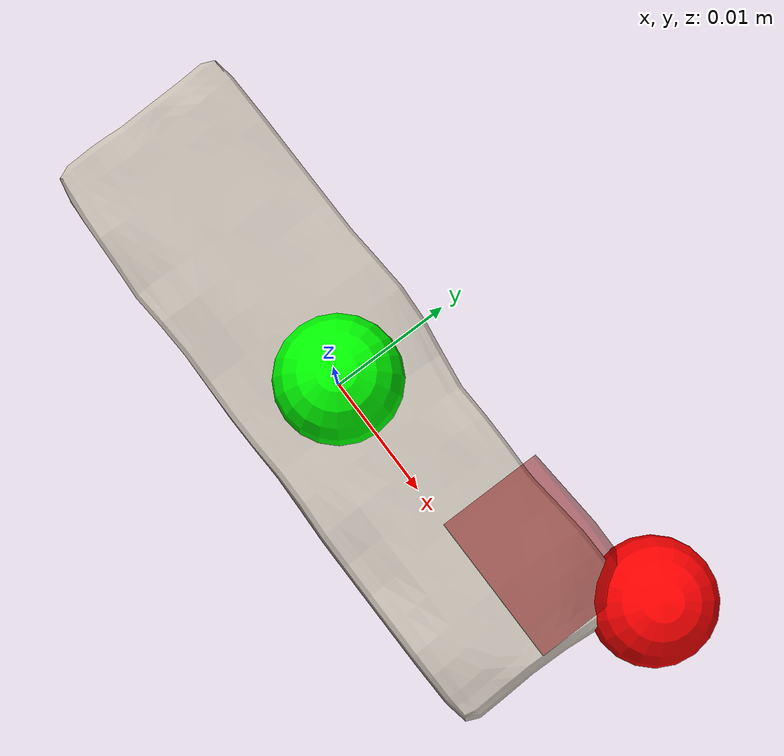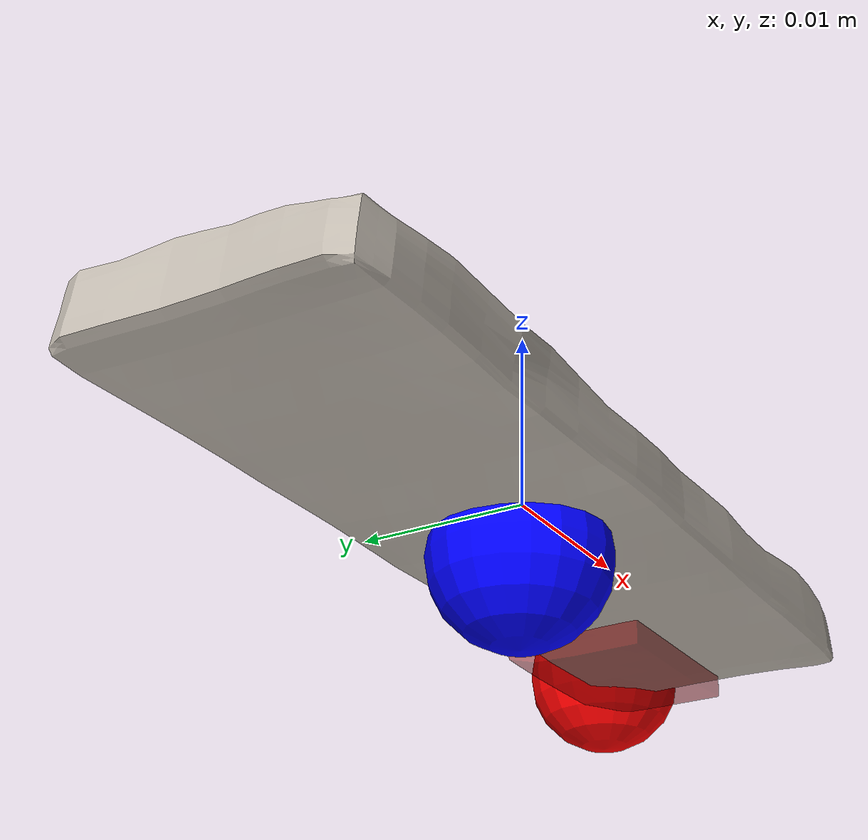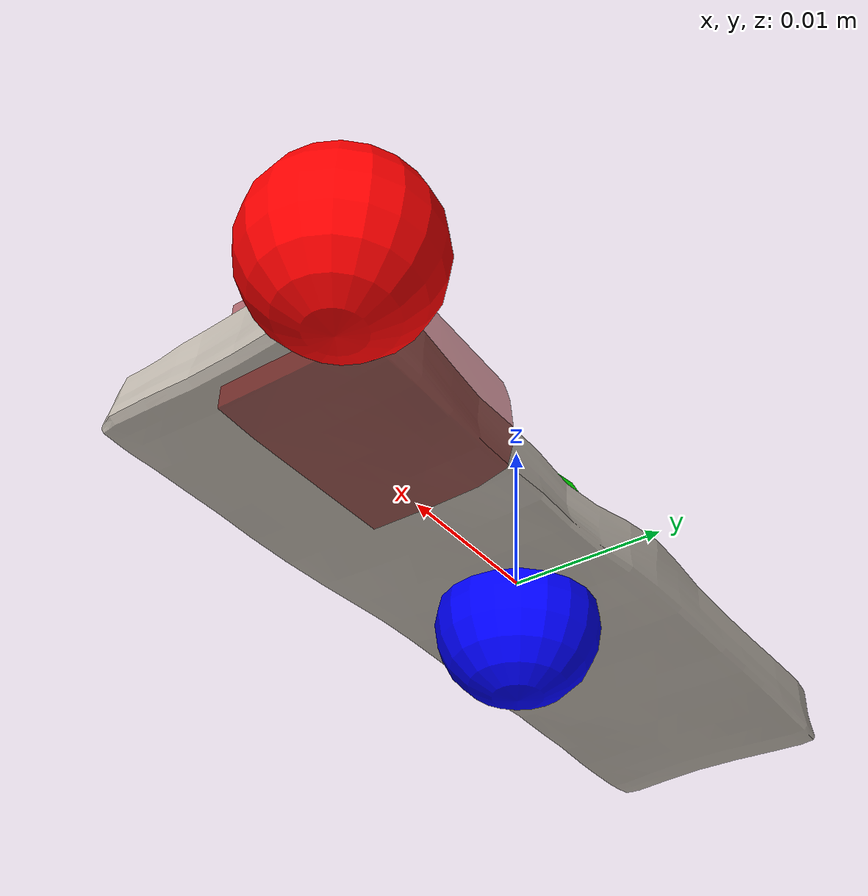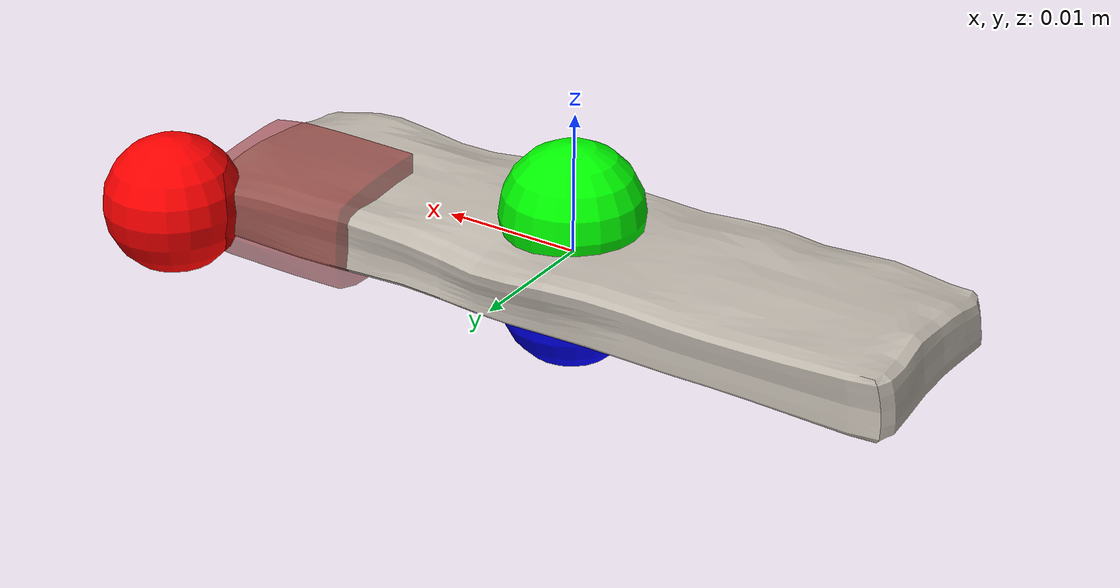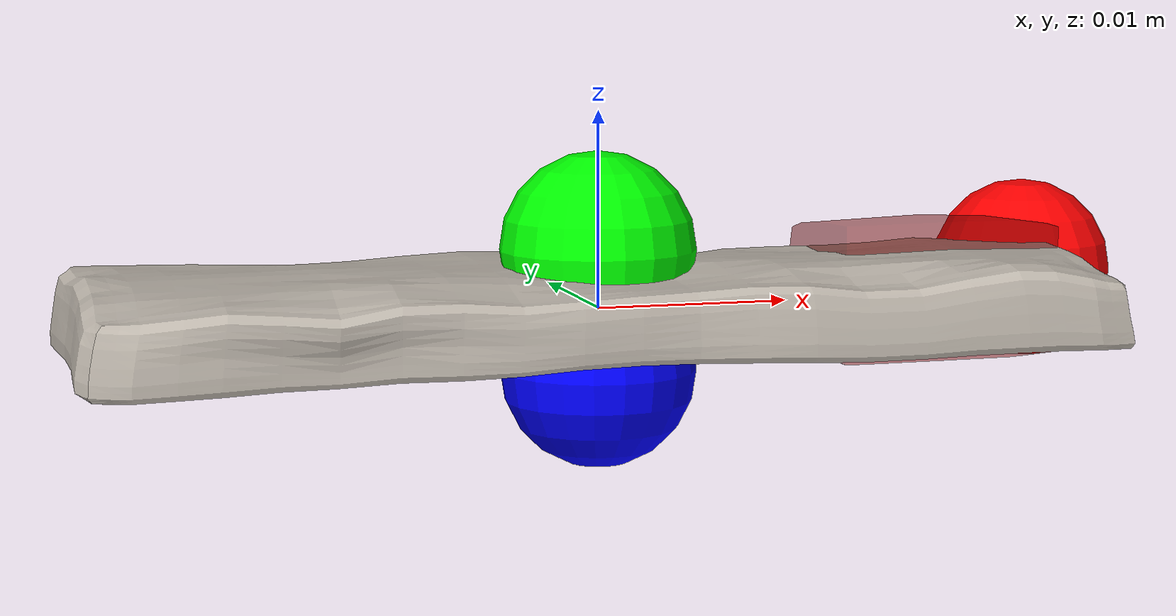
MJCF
<?xml version='1.0' encoding='UTF-8'?>
<mujoco model="model">
  <compiler angle="radian"/>
  <asset>
    <mesh file="visual/CreamCheese007.obj" name="CreamCheese007_vis"/>
    <texture file="visual/T_BC001.png" name="CreamCheese007_material" type="2d"/>
    <material name="CreamCheese007_material" rgba="1 1 1 1.0" texture="CreamCheese007_material" shininess="-35.000003814697266" specular="0.3103448502657381"/>
    <mesh file="collision/CreamCheese007001.obj" name="CreamCheese007001_mesh"/>
  </asset>
  <default>
    <default class="visual">
      <geom conaffinity="0" contype="0" group="1" type="mesh"/>
    </default>
    <default class="collision">
      <geom group="0" rgba="0.5 0 0 0.5"/>
    </default>
    <default class="spawn">
      <geom group="0" rgba="1 1 1 0.5" contype="0" conaffinity="0"/>
      <site group="0" rgba="1 1 1 0.5"/>
    </default>
    <default class="region">
      <geom group="1" conaffinity="0" contype="0" rgba="0 1 0 0"/>
    </default>
  </default>
  <worldbody>
    <body>
      <body name="object">
        <geom mesh="CreamCheese007_vis" type="mesh" solimp="0.998 0.998 0.001" solref="0.001 1" density="100" friction="0.95 0.3 0.1" class="visual" material="CreamCheese007_material"/>
        <geom mesh="CreamCheese007001_mesh" type="mesh" class="collision"/>
      </body>
      <site rgba="1 0 0 1" size="0.005" pos="0.02740335 0.00905266 -6.691999999999977e-05" name="horizontal_radius_site"/>
      <site rgba="0 1 0 1" size="0.005" pos="7.59499999999925e-06 0.00013666000000000028 0.00299593" name="top_site"/>
      <site rgba="0 0 1 1" size="0.005" pos="7.59499999999925e-06 0.00013666000000000028 -0.0031297699999999996" name="bottom_site"/>
    </body>
  </worldbody>
  <actuator/>
</mujoco>
